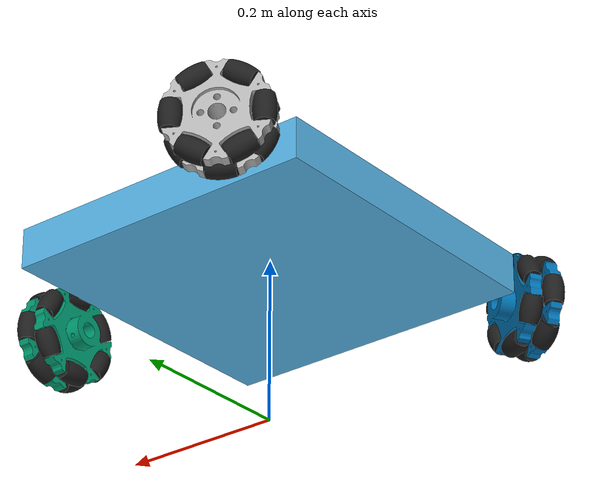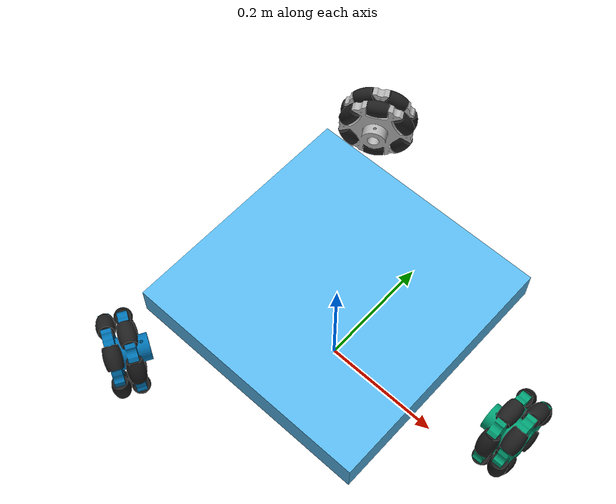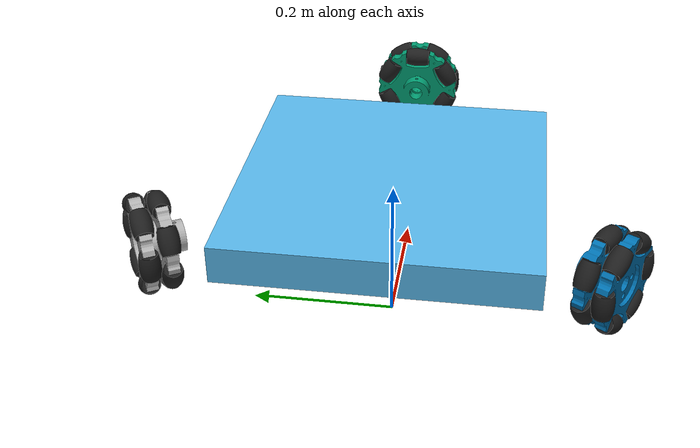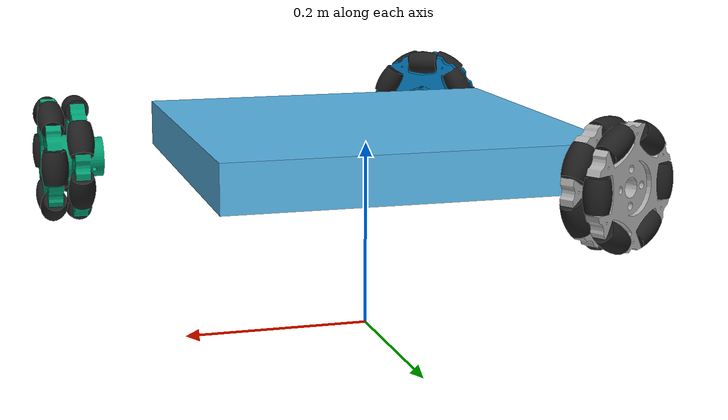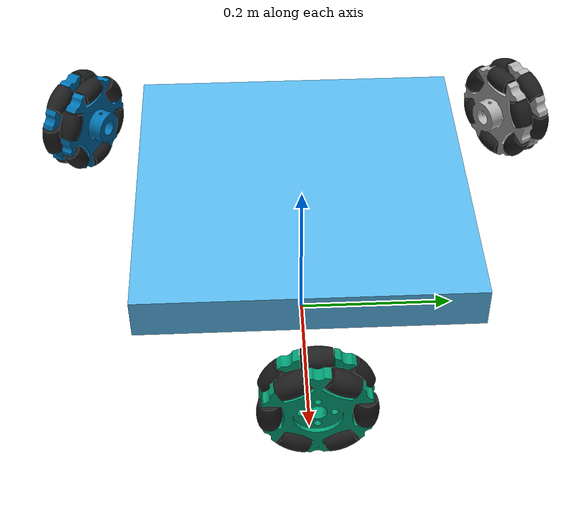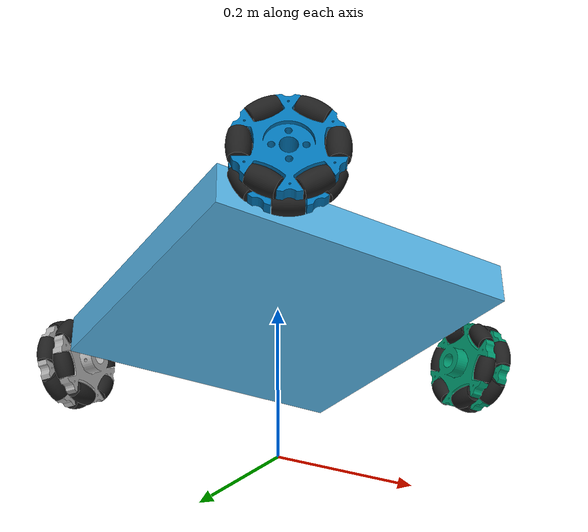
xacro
<?xml version="1.0" ?>
<robot name="tricycle" xmlns:xacro="http://ros.org/wiki/xacro">
    <xacro:property name="robot_namespace" value="tricycle"/>
    <xacro:include filename="$(find tricycle)/urdf/chwheel.xacro" />
    <xacro:property name="chassis_offset" value="0.2"/>
    <!-- 定义底盘尺寸 -->
    <xacro:property name="chassis_length" value="0.4"/>
    <xacro:property name="chassis_width" value="0.4"/>
    <xacro:property name="chassis_height" value="0.05"/>
    <xacro:property name="chassis_mass" value="5"/>
    <!-- 定义底盘和轮子关系 -->
    <xacro:property name="r_chssis_wheel" value="${chassis_length*sqrt(2)/2}"/>
    <xacro:property name="height_chassis_wheel" value="-${chassis_height}"/>

    <xacro:macro name="wheel_2_chassis_origin_macro" params="n">
        <origin xyz="${r_chssis_wheel*cos(pi/3*n*2)} ${r_chssis_wheel*sin(pi/3*n*2)} ${chassis_offset}"
                rpy="${pi/2} 0 ${pi/3*n*2+pi/2}" />
    </xacro:macro>

    <link name="world"/>
    <joint name="fixed" type="floating">
        <parent link="world"/>
        <child link="base_link"/>
    </joint>

    <link name="base_link">
        <inertial>
            <origin xyz="0 0 ${chassis_offset}" rpy="0 0 0"/>
            <mass value="${chassis_mass}"/>
            <xacro:box_inertia x="${chassis_length}" y="${chassis_width}" z="${chassis_height}" mass="${chassis_mass}"/>
        </inertial>
        <visual>
            <origin xyz="0 0 ${chassis_offset}" rpy="0 0 0"/>
            <geometry>
                <box size="${chassis_length} ${chassis_width} ${chassis_height}" />
            </geometry>
        </visual>
        <collision>
            <origin xyz="0 0 ${chassis_offset}" rpy="0 0 0"/>
            <geometry>
                <box size="${chassis_length} ${chassis_width} ${chassis_height}" />
            </geometry>
        </collision>
    </link>

    <xacro:chwheel_macro name="wheel" suffix="0" parent="base_link">
        <xacro:wheel_2_chassis_origin_macro n="0"/>
    </xacro:chwheel_macro>
    <xacro:chwheel_macro name="wheel" suffix="1" parent="base_link">
        <xacro:wheel_2_chassis_origin_macro n="1"/>
    </xacro:chwheel_macro>
    <xacro:chwheel_macro name="wheel" suffix="2" parent="base_link">
        <xacro:wheel_2_chassis_origin_macro n="2"/>
    </xacro:chwheel_macro>

    <gazebo reference="base_link" maxContacts="10" laserRetro="0" selfCollide="false"/>
    <gazebo>
        <plugin name="gazebo_ros_control" filename="libgazebo_ros_control.so">
            <robotNamespace>/tricycle</robotNamespace>
            <robotSimType>gazebo_ros_control/DefaultRobotHWSim</robotSimType>
        </plugin>
    </gazebo>
</robot>

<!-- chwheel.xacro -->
<robot xmlns:xacro="http://ros.org/wiki/xacro">
    <xacro:include filename="$(find tricycle)/urdf/common.xacro" />
    <!-- 定义质量 -->
    <xacro:property name="wheel_bar_mass" value="0.01"/>
    <xacro:property name="wheel_frame_mass" value="0.445"/>

    <!-- 定义尺寸 -->
    <xacro:property name="r_wheel" value="${0.127/2}"/>
    <xacro:property name="l_wheel" value="0.039"/>
    <xacro:property name="r_bar2wheel" value="${0.020*2.5}"/>
    <xacro:property name="r_bar" value="${r_wheel/12}"/>
    <xacro:property name="l_bar" value="${r_bar*2}"/>

    <!-- 定义惯量 -->
    <!-- 定义mesh文件 -->
    <xacro:property name="bar_mesh_file" value="$(find tricycle)/meshes/bar.stl"/>
    <xacro:property name="wheelframe_mesh_file" value="$(find tricycle)/meshes/wheel_frame.stl"/>

    <!-- 定义滚轮和轮框的几何关系 -->
    <xacro:property name="up_height" value="${0.02098*2.5}"/>
    <xacro:property name="low_height" value="${0.01028*2.5}"/>

    <!-- 定义滚轮生成宏 -->
    <xacro:macro name="wheel_bar_macro" params="parent suffix *origin">
        <!-- for bar link -->
        <link name="${parent}/bar_${suffix}">
            <inertial>
                <origin xyz="0 0 0" rpy="0 0 0"/>
                <mass value="${wheel_bar_mass}"/>
                <xacro:cylinder_inertia r="${r_bar}" l="${l_bar}" mass="${wheel_bar_mass}"/>
            </inertial>
            <visual>
                <origin xyz="0 0 0" rpy="0 0 0"/>
                <geometry>
                    <mesh filename="${bar_mesh_file}" scale="2.5 2.5 2.5" />
                </geometry>
            </visual>
            <collision>
                <origin xyz="0 0 0" rpy="0 0 0"/>
                <geometry>
                    <mesh filename="${bar_mesh_file}" scale="2.6 2.6 2.6" />
                </geometry>
            </collision>
        </link>
        <joint name="${parent}/bar_joint_${suffix}" type="continuous">
            <xacro:insert_block name="origin" />
            <parent link="${parent}" />
            <child link="${parent}/bar_${suffix}" />
            <axis xyz="0 0 1" />
        </joint>
        <gazebo reference="${parent}/bar_${suffix}">
            <mu1>50</mu1>
            <mu2>50</mu2>
            <material>Gazebo/Black</material>
            <gravity>true</gravity>
            <minDepth>0.0005 </minDepth>
        </gazebo>
    </xacro:macro>
    <xacro:macro name="wheel_bar_instance" params="parent isup n ">
        <xacro:if value="${isup}">
            <xacro:wheel_bar_macro parent="${parent}" suffix="${n}" >
                <origin xyz="${r_bar2wheel*cos(pi/3*n)} ${r_bar2wheel*sin(pi/3*n)} ${up_height}" rpy="${pi/2} 0 ${pi/3*n}" />
            </xacro:wheel_bar_macro>
        </xacro:if>
        <xacro:if value="${isup}">
            <xacro:wheel_bar_macro parent="${parent}" suffix="${6+n}" >
                <origin xyz="${r_bar2wheel*cos(pi/3*n+pi/6)} ${r_bar2wheel*sin(pi/3*n+pi/6)} ${low_height}" rpy="${pi/2} 0 ${pi/3*n+pi/6}" />
            </xacro:wheel_bar_macro>
        </xacro:if>
    </xacro:macro>

    <!-- 定义轮子传动宏 -->
    <xacro:macro name="wheel_transmission_macro" params="name joint actuator">
        <transmission name="${name}">
            <type>transmission_interface/SimpleTransmission</type>
            <joint name="${joint}">
                <hardwareInterface>hardware_interface/EffortJointInterface</hardwareInterface>
            </joint>
            <actuator name="${actuator}">
                <hardwareInterface>hardware_interface/EffortJointInterface</hardwareInterface>
                <mechanicalReduction>1</mechanicalReduction>
            </actuator>
        </transmission>
    </xacro:macro>

    <!-- 定义轮子生成宏 -->
    <xacro:macro name="chwheel_macro" params="name suffix parent *origin">
        <!-- for base_wheel joint -->
        <joint name="base_${name}_${suffix}_joint" type="continuous">
            <parent link="${parent}" />
            <child link="${name}_${suffix}" />
            <xacro:insert_block name="origin"/>
            <axis xyz="0 0 1" />
            <dynamics damping="0.1" friction="0.01" />
        </joint>
        <link name="${name}_${suffix}">
            <inertial>
                <origin xyz="0 0 0" rpy="0 0 0"/>
                <mass value="${wheel_frame_mass}" />  <!-- [kg] -->
                <xacro:cylinder_inertia r="${r_wheel}" l="${l_wheel}" mass="${wheel_frame_mass}"/>
            </inertial>
            <visual>
                <origin xyz="0 0 0" rpy="0 0 0"/>
                <geometry>
                    <mesh filename="${wheelframe_mesh_file}" scale="2.5 2.5 2.5" />
                </geometry>
            </visual>
            <collision>
                <origin xyz="0 0 0" rpy="0 0 0"/>
                <geometry>
                    <mesh filename="${wheelframe_mesh_file}" scale="2.5 2.5 2.5" />
                </geometry>
            </collision>
        </link>
        <xacro:wheel_bar_instance parent="${name}_${suffix}" isup="true" n="0"/>
        <xacro:wheel_bar_instance parent="${name}_${suffix}" isup="true" n="1"/>
        <xacro:wheel_bar_instance parent="${name}_${suffix}" isup="true" n="2"/>
        <xacro:wheel_bar_instance parent="${name}_${suffix}" isup="true" n="3"/>
        <xacro:wheel_bar_instance parent="${name}_${suffix}" isup="true" n="4"/>
        <xacro:wheel_bar_instance parent="${name}_${suffix}" isup="true" n="5"/>
        <xacro:wheel_bar_instance parent="${name}_${suffix}" isup="false" n="0"/>
        <xacro:wheel_bar_instance parent="${name}_${suffix}" isup="false" n="1"/>
        <xacro:wheel_bar_instance parent="${name}_${suffix}" isup="false" n="2"/>
        <xacro:wheel_bar_instance parent="${name}_${suffix}" isup="false" n="3"/>
        <xacro:wheel_bar_instance parent="${name}_${suffix}" isup="false" n="4"/>
        <xacro:wheel_bar_instance parent="${name}_${suffix}" isup="false" n="5"/>

        <xacro:wheel_transmission_macro name="wheel_trans_${suffix}" joint="base_${name}_${suffix}_joint" actuator="wheel_act_${suffix}"  />
    </xacro:macro>
</robot>

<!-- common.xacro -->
<robot xmlns:xacro="http://ros.org/wiki/xacro">
    <xacro:macro name="cylinder_inertia" params="r l mass">
        <inertia
                ixx="${mass/12.0*(3*r*r+l*l)}" ixy="0.0" ixz="0.0"
                iyy="${mass/12.0*(3*r*r+l*l)}"  iyz="0.0"
                izz="${0.5*mass*r*r}"
        />
    </xacro:macro>
    <xacro:macro name="cylinder_inertial" params="r l mass *origin">
        <inertial>
            <mass value="${mass}"/>
            <xacro:insert_block name="origin" />
            <xacro:cylinder_inertia r="${r}" l="${l}" mass="${mass}" />
        </inertial>
    </xacro:macro>

    <xacro:macro name="box_inertia" params="x y z mass">
        <inertia ixx="${0.0833333 * mass * (y*y + z*z)}" ixy="0.0" ixz="0.0"
                 iyy="${0.0833333 * mass * (x*x + z*z)}" iyz="0.0"
                 izz="${0.0833333 * mass * (x*x + y*y)}" />
    </xacro:macro>

    <xacro:macro name="wheel_orientation" params="r z n">
        <origin xyz="${r_wheel*cos(pi/3*n)} ${r_wheel*sin(pi/3*n)} ${z}" rpy="${pi/2} 0 ${pi/3*n}" />
    </xacro:macro>
</robot>
